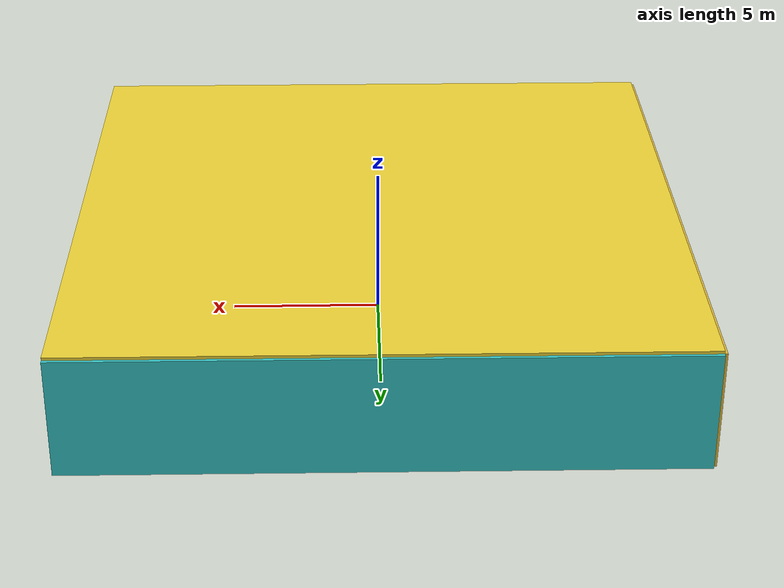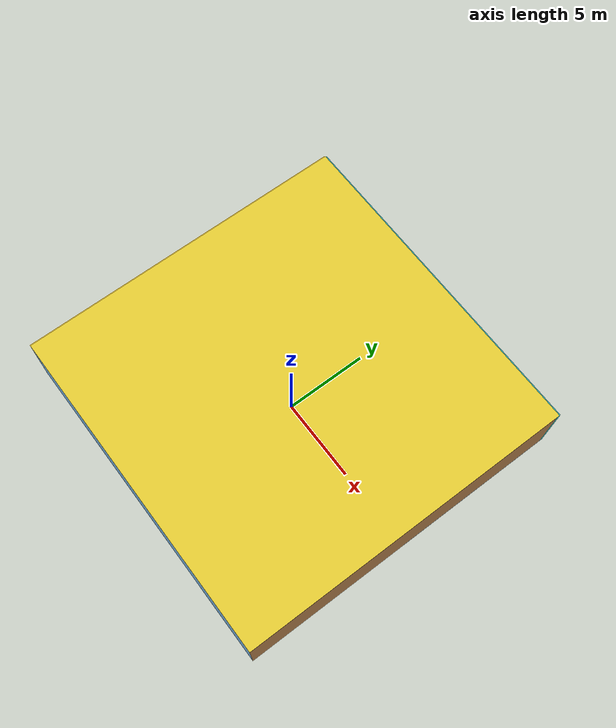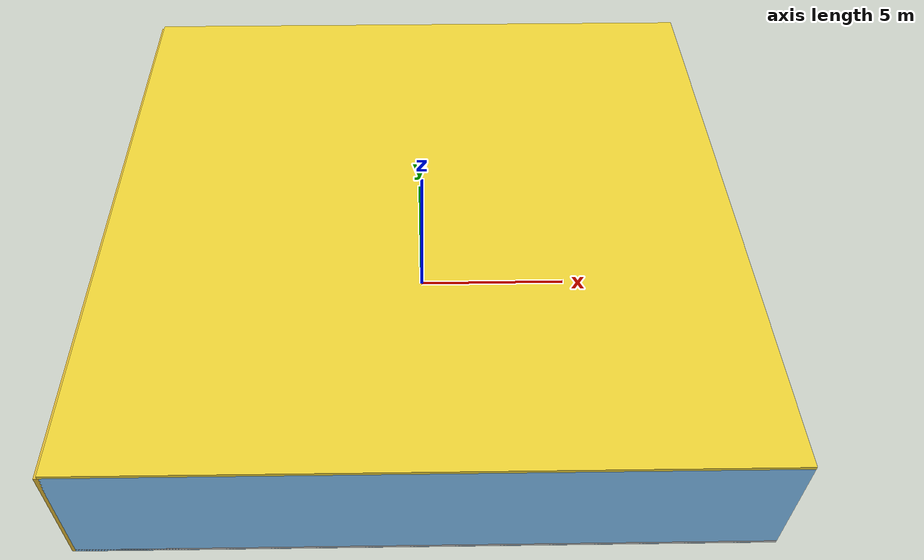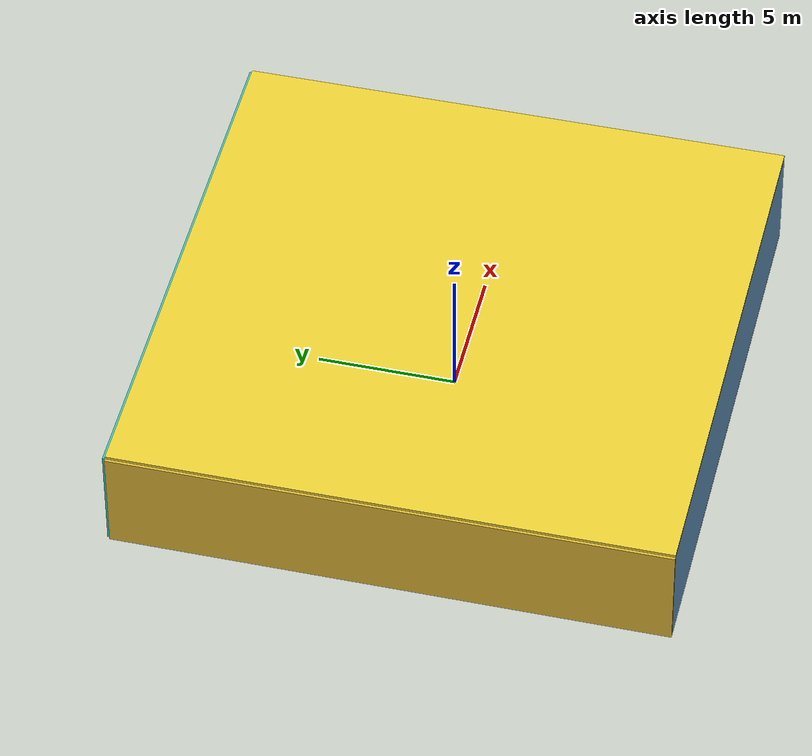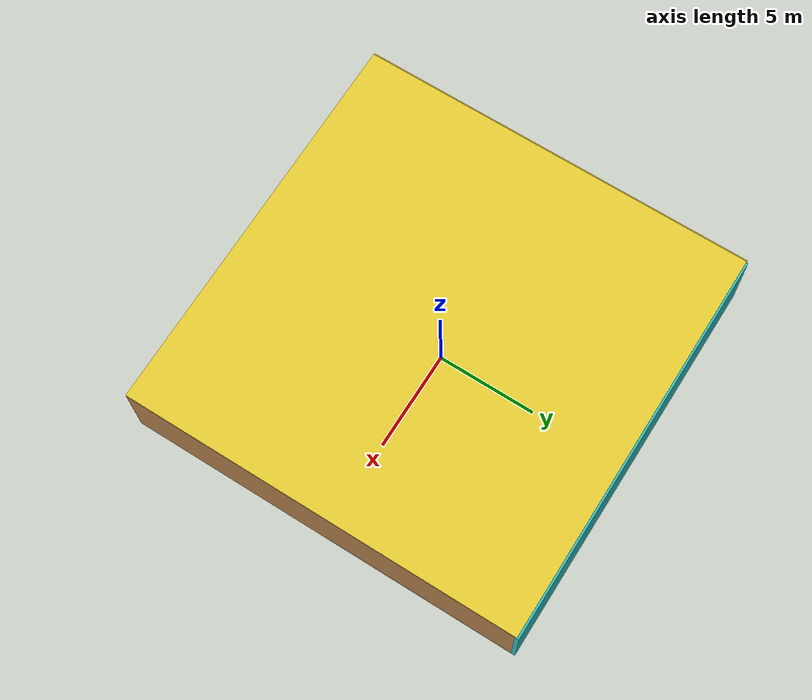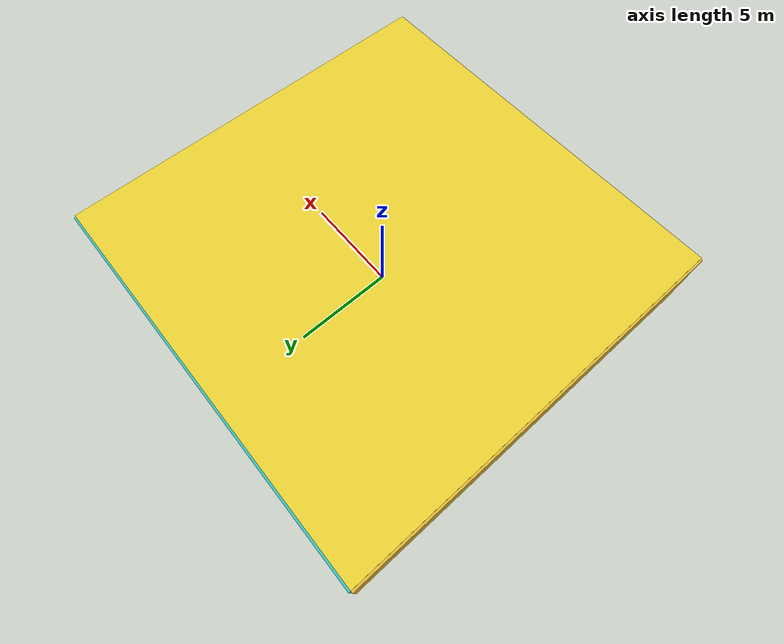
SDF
<sdf version="1.4">
 <world name="default">
  <physics type="ode">
   <max_step_size>0.001</max_step_size>
   <real_time_factor>1</real_time_factor>
   <real_time_update_rate>1000</real_time_update_rate>
   <gravity>0 0 -9.8</gravity>
  </physics>
  <scene><ambient>0.4 0.4 0.4 1</ambient><background>0.7 0.7 0.7 1</background><shadows>1</shadows></scene>
  <model name="Surrounding">
   <static>1</static>
   <link name="Ceiling">
    <collision name="Ceiling_Collision"><geometry><box><size>20 20 0.1</size></box></geometry></collision>
    <visual name="Ceiling_Visual">
     <geometry><box><size>20 20 0.1</size></box></geometry>
     <material>
      <script><uri>file://media/materials/scripts/gazebo.material</uri><name>Gazebo/ZincYellow</name></script>
     </material>
    </visual>
    <pose>0 0 4.05 0 0 0</pose>
   </link>
   <link name="Wall_South">
    <collision name="Wall_South_Collision">
     <geometry><box><size>20 0 4</size></box></geometry>
     <pose>0 0 2 0 -0 0</pose>
    </collision>
    <visual name="Wall_South_Visual">
     <pose>0 0 2 0 -0 0</pose>
     <geometry><box><size>20 0 4</size></box></geometry>
     <material>
      <script><uri>file://media/materials/scripts/gazebo.material</uri><name>Gazebo/SkyBlue</name></script>
     </material>
    </visual>
    <velocity_decay><linear>0</linear><angular>0</angular></velocity_decay>
    <pose>0 -10 0 0 -0 0</pose>
   </link>
   <link name="Wall_East">
    <collision name="Wall_21_Collision">
     <geometry><box><size>20 0 4</size></box></geometry>
     <pose>0 0 2 0 -0 0</pose>
    </collision>
    <visual name="Wall_21_Visual">
     <pose>0 0 2 0 -0 0</pose>
     <geometry><box><size>20 0 4</size></box></geometry>
     <material>
      <script><uri>file://media/materials/scripts/gazebo.material</uri><name>Gazebo/WoodPallet</name></script>
     </material>
    </visual>
    <velocity_decay><linear>0</linear><angular>0</angular></velocity_decay>
    <pose>10 0 0 0 -0 1.5708</pose>
   </link>
   <link name="Wall_North">
    <collision name="Wall_22_Collision">
     <geometry><box><size>20 0.2 4</size></box></geometry>
     <pose>0 0 2 0 -0 0</pose>
    </collision>
    <visual name="Wall_22_Visual">
     <pose>0 0 2 0 -0 0</pose>
     <geometry><box><size>20 0.2 4</size></box></geometry>
     <material>
      <script>
       <uri>file://media/materials/scripts/gazebo.material</uri>
       <name>Gazebo/TurquoiseGlowOutline</name>
      </script>
     </material>
    </visual>
    <velocity_decay><linear>0</linear><angular>0</angular></velocity_decay>
    <pose>0 10 0 0 -0 0</pose>
   </link>
   <link name="Wall_West">
    <collision name="Wall_23_Collision">
     <geometry><box><size>20 0.2 4</size></box></geometry>
     <pose>0 0 2 0 -0 0</pose>
    </collision>
    <visual name="Wall_23_Visual">
     <pose>0 0 2 0 -0 0</pose>
     <geometry><box><size>20 0.2 4</size></box></geometry>
     <material>
      <script><uri>file://media/materials/scripts/gazebo.material</uri><name>Gazebo/Gold</name></script>
     </material>
    </visual>
    <velocity_decay><linear>0</linear><angular>0</angular></velocity_decay>
    <pose>-10 0 0 0 0 -1.5708</pose>
   </link>
   <link name="Ground_link">
    <collision name="collision">
     <pose>0 0 .05 0 -0 0</pose>
     <geometry><box><size>20 20 0.1</size></box></geometry>
    </collision>
    <visual name="visual">
     <pose>0 0 .05 0 -0 0</pose>
     <geometry><box><size>20 20 0.1</size></box></geometry>
     <material>
      <script><uri>file://media/materials/scripts/gazebo.material</uri><name>Gazebo/LightOff</name></script>
     </material>
    </visual>
   </link>
   <static>1</static>
  </model>
  <spherical_coordinates>
   <surface_model>EARTH_WGS84</surface_model>
   <latitude_deg>0</latitude_deg>
   <longitude_deg>0</longitude_deg>
   <elevation>0</elevation>
   <heading_deg>0</heading_deg>
  </spherical_coordinates>
  <light name="lightball_0" type="diffuse">
   <diffuse>0.8 0.8 0.8 1</diffuse>
   <specular>0.2 0.2 0.2 1</specular>
   <attenuation>
    <range>100</range>
    <constant>0.7</constant>
    <linear>0.01</linear>
    <quadratic>0.001</quadratic>
   </attenuation>
   <direction>-0.5 0.1 -0.9</direction>
   <pose>-7.48862736599 7.44030804497 1.39911546802 0 0 0</pose>
  </light>
  <light name="lightball_1" type="diffuse">
   <diffuse>0.8 0.8 0.8 1</diffuse>
   <specular>0.2 0.2 0.2 1</specular>
   <attenuation>
    <range>100</range>
    <constant>0.7</constant>
    <linear>0.01</linear>
    <quadratic>0.001</quadratic>
   </attenuation>
   <direction>-0.5 0.1 -0.9</direction>
   <pose>6.13905464371 8.3071751952 0.535871669314 0 0 0</pose>
  </light>
  <light name="lightball_2" type="diffuse">
   <diffuse>0.8 0.8 0.8 1</diffuse>
   <specular>0.2 0.2 0.2 1</specular>
   <attenuation>
    <range>100</range>
    <constant>0.7</constant>
    <linear>0.01</linear>
    <quadratic>0.001</quadratic>
   </attenuation>
   <direction>-0.5 0.1 -0.9</direction>
   <pose>4.85009296407 0.437007060411 3.29103947129 0 0 0</pose>
  </light>
  <light name="lightball_3" type="diffuse">
   <diffuse>0.8 0.8 0.8 1</diffuse>
   <specular>0.2 0.2 0.2 1</specular>
   <attenuation>
    <range>100</range>
    <constant>0.7</constant>
    <linear>0.01</linear>
    <quadratic>0.001</quadratic>
   </attenuation>
   <direction>-0.5 0.1 -0.9</direction>
   <pose>-1.69858284553 -2.93204385469 3.58967700279 0 0 0</pose>
  </light>
  <light name="lightball_4" type="diffuse">
   <diffuse>0.8 0.8 0.8 1</diffuse>
   <specular>0.2 0.2 0.2 1</specular>
   <attenuation>
    <range>100</range>
    <constant>0.7</constant>
    <linear>0.01</linear>
    <quadratic>0.001</quadratic>
   </attenuation>
   <direction>-0.5 0.1 -0.9</direction>
   <pose>-8.87947355261 1.88600149614 2.14412020149 0 0 0</pose>
  </light>
  <light name="lightball_5" type="diffuse">
   <diffuse>0.8 0.8 0.8 1</diffuse>
   <specular>0.2 0.2 0.2 1</specular>
   <attenuation>
    <range>100</range>
    <constant>0.7</constant>
    <linear>0.01</linear>
    <quadratic>0.001</quadratic>
   </attenuation>
   <direction>-0.5 0.1 -0.9</direction>
   <pose>3.44463186396 1.22753264503 1.25269168511 0 0 0</pose>
  </light>
  <light name="lightball_6" type="diffuse">
   <diffuse>0.8 0.8 0.8 1</diffuse>
   <specular>0.2 0.2 0.2 1</specular>
   <attenuation>
    <range>100</range>
    <constant>0.7</constant>
    <linear>0.01</linear>
    <quadratic>0.001</quadratic>
   </attenuation>
   <direction>-0.5 0.1 -0.9</direction>
   <pose>2.65478610836 -5.15977817338 1.84918785299 0 0 0</pose>
  </light>
  <light name="lightball_7" type="diffuse">
   <diffuse>0.8 0.8 0.8 1</diffuse>
   <specular>0.2 0.2 0.2 1</specular>
   <attenuation>
    <range>100</range>
    <constant>0.7</constant>
    <linear>0.01</linear>
    <quadratic>0.001</quadratic>
   </attenuation>
   <direction>-0.5 0.1 -0.9</direction>
   <pose>-2.76710498757 0.41856198958 3.42191930477 0 0 0</pose>
  </light>
  <light name="lightball_8" type="diffuse">
   <diffuse>0.8 0.8 0.8 1</diffuse>
   <specular>0.2 0.2 0.2 1</specular>
   <attenuation>
    <range>100</range>
    <constant>0.7</constant>
    <linear>0.01</linear>
    <quadratic>0.001</quadratic>
   </attenuation>
   <direction>-0.5 0.1 -0.9</direction>
   <pose>9.78144697052 2.79358667563 3.7726090925 0 0 0</pose>
  </light>
  <include>
   <uri>model://robocup_3Dsim_goal</uri>
   <pose>-7.47451624437 8.22220217681 0 0 0 2.96357139927</pose>
  </include>
  <include><uri>model://cabinet</uri><pose>-4.25869717133 0.953553347758 0 0 0 2.43130383561</pose></include>
  <include>
   <uri>model://construction_cone</uri>
   <pose>-1.19081917052 -4.43255553604 0 0 0 0.26814605152</pose>
  </include>
  <include>
   <uri>model://textured_shapes</uri>
   <pose>4.55951258915 -3.9676234352 0 0 0 1.08537635367</pose>
  </include>
 </world>
</sdf>

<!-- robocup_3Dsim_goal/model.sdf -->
<sdf version="1.5">
  <model name="robocup_3d_goal">
    <static>true</static>
    <link name="left_post">
      <pose>0 1.05 0.45 0 0 0</pose>
      <collision name="collision">
        <geometry>
          <cylinder>
            <radius>0.05</radius>
            <length>0.9</length>
          </cylinder>
        </geometry>
      </collision>
      <visual name="visual">
        <geometry>
          <cylinder>
            <radius>0.05</radius>
            <length>0.9</length>
          </cylinder>
        </geometry>
        <material>
          <script>
            <uri>file://media/materials/scripts/gazebo.material</uri>
            <name>Gazebo/ZincYellow</name>
          </script>
        </material>
      </visual>
    </link>
    <link name="left_support_horiz_lower">
      <pose>0.30 1.05 0.01 0 0 0</pose>
      <collision name="collision">
        <geometry>
          <box>
            <size>0.50 0.02 0.02</size>
          </box>
        </geometry>
      </collision>
      <visual name="visual">
        <geometry>
          <box>
            <size>0.50 0.02 0.02</size>
          </box>
        </geometry>
        <material>
          <script>
            <uri>file://media/materials/scripts/gazebo.material</uri>
            <name>Gazebo/White</name>
          </script>
        </material>
      </visual>
    </link>
    <link name="left_support_horiz_upper">
      <pose>0.30 1.05 0.79 0 0 0</pose>
      <collision name="collision">
        <geometry>
          <box>
            <size>0.50 0.02 0.02</size>
          </box>
        </geometry>
      </collision>
      <visual name="visual">
        <geometry>
          <box>
            <size>0.50 0.02 0.02</size>
          </box>
        </geometry>
        <material>
          <script>
            <uri>file://media/materials/scripts/gazebo.material</uri>
            <name>Gazebo/White</name>
          </script>
        </material>
      </visual>
    </link>
    <link name="left_support_vertical">
      <pose>0.56 1.05 0.4 0 1.5708 0</pose>
      <collision name="collision">
        <geometry>
          <box>
            <size>0.80 0.02 0.02</size>
          </box>
        </geometry>
      </collision>
      <visual name="visual">
        <geometry>
          <box>
            <size>0.80 0.02 0.02</size>
          </box>
        </geometry>
        <material>
          <script>
            <uri>file://media/materials/scripts/gazebo.material</uri>
            <name>Gazebo/White</name>
          </script>
        </material>
      </visual>
    </link>
    <link name="right_support_horiz_lower">
      <pose>0.30 -1.05 0.01 0 0 0</pose>
      <collision name="collision">
        <geometry>
          <box>
            <size>0.50 0.02 0.02</size>
          </box>
        </geometry>
      </collision>
      <visual name="visual">
        <geometry>
          <box>
            <size>0.50 0.02 0.02</size>
          </box>
        </geometry>
        <material>
          <script>
            <uri>file://media/materials/scripts/gazebo.material</uri>
            <name>Gazebo/White</name>
          </script>
        </material>
      </visual>
    </link>
    <link name="right_support_horiz_upper">
      <pose>0.30 -1.05 0.79 0 0 0</pose>
      <collision name="collision">
        <geometry>
          <box>
            <size>0.50 0.02 0.02</size>
          </box>
        </geometry>
      </collision>
      <visual name="visual">
        <geometry>
          <box>
            <size>0.50 0.02 0.02</size>
          </box>
        </geometry>
        <material>
          <script>
            <uri>file://media/materials/scripts/gazebo.material</uri>
            <name>Gazebo/White</name>
          </script>
        </material>
      </visual>
    </link>
    <link name="right_support_vertical">
      <pose>0.56 -1.05 0.4 0 1.5708 0</pose>
      <collision name="collision">
        <geometry>
          <box>
            <size>0.80 0.02 0.02</size>
          </box>
        </geometry>
      </collision>
      <visual name="visual">
        <geometry>
          <box>
            <size>0.80 0.02 0.02</size>
          </box>
        </geometry>
        <material>
          <script>
            <uri>file://media/materials/scripts/gazebo.material</uri>
            <name>Gazebo/White</name>
          </script>
        </material>
      </visual>
    </link>
    <link name="center_support_horiz_lower">
      <pose>0.56 0 0.01 0 1.5708 0</pose>
      <collision name="collision">
        <geometry>
          <box>
            <size>0.02 2.08 0.02</size>
          </box>
        </geometry>
      </collision>
      <visual name="visual">
        <geometry>
          <box>
            <size>0.02 2.08 0.02</size>
          </box>
        </geometry>
        <material>
          <script>
            <uri>file://media/materials/scripts/gazebo.material</uri>
            <name>Gazebo/White</name>
          </script>
        </material>
      </visual>
    </link>
    <link name="center_support_horiz_upper">
      <pose>0.56 0 0.79 0 1.5708 0</pose>
      <collision name="collision">
        <geometry>
          <box>
            <size>0.02 2.08 0.02</size>
          </box>
        </geometry>
      </collision>
      <visual name="visual">
        <geometry>
          <box>
            <size>0.02 2.08 0.02</size>
          </box>
        </geometry>
        <material>
          <script>
            <uri>file://media/materials/scripts/gazebo.material</uri>
            <name>Gazebo/White</name>
          </script>
        </material>
      </visual>
    </link>
    <link name="right_post">
      <pose>0 -1.05 0.45 0 0 0</pose>
      <collision name="collision">
        <geometry>
          <cylinder>
            <radius>0.05</radius>
            <length>0.9</length>
          </cylinder>
        </geometry>
      </collision>
      <visual name="visual">
        <geometry>
          <cylinder>
            <radius>0.05</radius>
            <length>0.9</length>
          </cylinder>
        </geometry>
        <material>
          <script>
            <uri>file://media/materials/scripts/gazebo.material</uri>
            <name>Gazebo/ZincYellow</name>
          </script>
        </material>
      </visual>
    </link>
    <link name="crossbar">
      <pose>0 0 0.85 1.57 1.57 0</pose>
      <collision name="collision">
        <geometry>
          <cylinder>
            <radius>0.05</radius>
            <length>2.0</length>
          </cylinder>
        </geometry>
      </collision>
      <visual name="visual">
        <geometry>
          <cylinder>
            <radius>0.05</radius>
            <length>2.0</length>
          </cylinder>
        </geometry>
        <material>
          <script>
            <uri>file://media/materials/scripts/gazebo.material</uri>
            <name>Gazebo/ZincYellow</name>
          </script>
        </material>
      </visual>
    </link>
    <link name="center_net">
      <pose>0.56 0 0.40 0 0 0</pose>
      <collision name="collision">
        <geometry>
          <box>
            <size>0.01 2.1 0.80</size>
          </box>
        </geometry>
      </collision>
      <visual name="visual">
        <geometry>
          <box>
            <size>0.01 2.1 0.80</size>
          </box>
        </geometry>
        <material>
          <script>
            <uri>model://../model_source/models/robocup09_spl_field/materials/scripts/</uri>
            <uri>model://../model_source/models/robocup09_spl_field/materials/textures/</uri>
            <name>RoboCup/Net</name>
          </script>
        </material>
      </visual>
    </link>
    <link name="left_net">
      <pose>0.30 1.05 0.40 0 0 0</pose>
      <collision name="collision">
        <geometry>
          <box>
            <size>0.50 0.01 0.76</size>
          </box>
        </geometry>
      </collision>
      <visual name="visual">
        <geometry>
          <box>
            <size>0.50 0.01 0.76</size>
          </box>
        </geometry>
        <material>
          <script>
            <uri>model://../model_source/models/robocup09_spl_field/materials/scripts/</uri>
            <uri>model://../model_source/models/robocup09_spl_field/materials/textures/</uri>
            <name>RoboCup/Net</name>
          </script>
        </material>
      </visual>
    </link>
    <link name="right_net">
      <pose>0.30 -1.05 0.40 0 0 0</pose>
      <collision name="collision">
        <geometry>
          <box>
            <size>0.50 0.01 0.76</size>
          </box>
        </geometry>
      </collision>
      <visual name="visual">
        <geometry>
          <box>
            <size>0.50 0.01 0.76</size>
          </box>
        </geometry>
        <material>
          <script>
            <uri>model://../model_source/models/robocup09_spl_field/materials/scripts/</uri>
            <uri>model://../model_source/models/robocup09_spl_field/materials/textures/</uri>
            <name>RoboCup/Net</name>
          </script>
        </material>
      </visual>
    </link>
  </model>
</sdf>

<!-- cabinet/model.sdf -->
<sdf version="1.5">
  <model name="cabinet">
    <static>true</static>
    <link name="cabinet_bottom_plate">
      <inertial>
        <pose>0 0 -1 0 0 0</pose>
        <inertia>
          <ixx>2.050000</ixx>
          <ixy>0</ixy>
          <ixz>0</ixz>
          <iyy>2.050000</iyy>
          <iyz>0</iyz>
          <izz>2.050000</izz>
        </inertia>
        <mass>25.000000</mass>
      </inertial>
      <collision name="cabinet_bottom_plate_geom">
        <pose>0 0 0.010000 0 0 0</pose>
        <geometry>
          <box>
            <size>0.450000 0.450000 0.020000</size>
          </box>
        </geometry>
      </collision>
      <visual name="cabinet_bottom_plate_geom_visual">
        <pose>0 0 0.010000 0 0 0</pose>
        <geometry>
          <box>
            <size>0.450000 0.450000 0.020000</size>
          </box>
        </geometry>
        <material>
          <script>
            <uri>model://media/materials/scripts/gazebo.material</uri>
            <name>Gazebo/Wood</name>
          </script>
        </material>
      </visual>
      <collision name="cabinet_bottom_plate_geom_cabinet_back_plate">
        <pose>0.235000 0 0.510000 0 0 0</pose>
        <geometry>
          <box>
            <size>0.020000 0.450000 1.020000</size>
          </box>
        </geometry>
      </collision>
      <visual name="cabinet_bottom_plate_geom_cabinet_back_plate_visual">
        <pose>0.235000 0 0.510000 0 0 0</pose>
        <geometry>
          <box>
            <size>0.020000 0.450000 1.020000</size>
          </box>
        </geometry>
        <material>
          <script>
            <uri>model://media/materials/scripts/gazebo.material</uri>
            <name>Gazebo/Wood</name>
          </script>
        </material>
      </visual>
      <collision name="cabinet_bottom_plate_geom_cabinet_left_plate">
        <pose>0 0.235000 0.510000 0 0 0</pose>
        <geometry>
          <box>
            <size>0.450000 0.020000 1.020000</size>
          </box>
        </geometry>
      </collision>
      <visual name="cabinet_bottom_plate_geom_cabinet_left_plate_visual">
        <pose>0 0.235000 0.510000 0 0 0</pose>
        <geometry>
          <box>
            <size>0.450000 0.020000 1.020000</size>
          </box>
        </geometry>
        <material>
          <script>
            <uri>model://media/materials/scripts/gazebo.material</uri>
            <name>Gazebo/Wood</name>
          </script>
        </material>
      </visual>
      <collision name="cabinet_bottom_plate_geom_cabinet_middle_plate">
        <pose>0 0 0.510000 0 0 0</pose>
        <geometry>
          <box>
            <size>0.450000 0.450000 0.020000</size>
          </box>
        </geometry>
      </collision>
      <visual name="cabinet_bottom_plate_geom_cabinet_middle_plate_visual">
        <pose>0 0 0.510000 0 0 0</pose>
        <geometry>
          <box>
            <size>0.450000 0.450000 0.020000</size>
          </box>
        </geometry>
        <material>
          <script>
            <uri>model://media/materials/scripts/gazebo.material</uri>
            <name>Gazebo/Wood</name>
          </script>
        </material>
      </visual>
      <collision name="cabinet_bottom_plate_geom_cabinet_right_plate">
        <pose>0 -0.235000 0.510000 0 0 0</pose>
        <geometry>
          <box>
            <size>0.450000 0.020000 1.020000</size>
          </box>
        </geometry>
      </collision>
      <visual name="cabinet_bottom_plate_geom_cabinet_right_plate_visual">
        <pose>0 -0.235000 0.510000 0 0 0</pose>
        <geometry>
          <box>
            <size>0.450000 0.020000 1.020000</size>
          </box>
        </geometry>
        <material>
          <script>
            <uri>model://media/materials/scripts/gazebo.material</uri>
            <name>Gazebo/Wood</name>
          </script>
        </material>
      </visual>
      <collision name="cabinet_bottom_plate_geom_cabinet_top_plate">
        <pose>0 0 1.010000 0 0 0</pose>
        <geometry>
          <box>
            <size>0.450000 0.450000 0.020000</size>
          </box>
        </geometry>
      </collision>
      <visual name="cabinet_bottom_plate_geom_cabinet_top_plate_visual">
        <pose>0 0 1.010000 0 0 0</pose>
        <geometry>
          <box>
            <size>0.450000 0.450000 0.020000</size>
          </box>
        </geometry>
        <material>
          <script>
            <uri>model://media/materials/scripts/gazebo.material</uri>
            <name>Gazebo/Wood</name>
          </script>
        </material>
      </visual>
    </link>
  </model>
</sdf>

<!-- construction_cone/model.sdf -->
<sdf version="1.5">
  <model name="Construction Cone">
    <link name="link">
      <collision name="collision">
        <geometry>
          <mesh>
            <scale>10 10 10</scale>
            <uri>file://isr-testbed/construction_cone/meshes/construction_cone.dae</uri>
          </mesh>
        </geometry>
      </collision>
      <visual name="visual">
        <geometry>
          <mesh>
            <scale>10 10 10</scale>
            <uri>file://isr-testbed/construction_cone/meshes/construction_cone.dae</uri>
          </mesh>
        </geometry>
      </visual>
    </link>
  </model>
</sdf>

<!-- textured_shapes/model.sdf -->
<sdf version="1.6">
  <model name="textured_shapes">
    <pose>0 0 0.5 0 0 0</pose>
    <link name="box">
      <pose>0 -1.5 0 0 0 0</pose>
      <collision name="collision">
        <geometry>
          <box>
            <size>1 1 1</size>
          </box>
        </geometry>
      </collision>
      <visual name="visual">
        <geometry>
          <box>
            <size>1 1 1</size>
          </box>
        </geometry>
        <material>
          <script>
            <uri>model://../model_source/models/textured_shapes/materials/scripts</uri>
            <uri>model://../model_source/models/textured_shapes/materials/textures</uri>
            <name>TexturedShape/Squares</name>
          </script>
        </material>
      </visual>
    </link>
    <link name="sphere">
      <collision name="collision">
        <geometry>
          <sphere>
            <radius>0.5</radius>
          </sphere>
        </geometry>
      </collision>
      <visual name="visual">
        <geometry>
          <sphere>
            <radius>0.5</radius>
          </sphere>
        </geometry>
        <material>
          <script>
            <uri>model://../model_source/models/textured_shapes/materials/scripts</uri>
            <uri>model://../model_source/models/textured_shapes/materials/textures</uri>
            <name>TexturedShape/Squares</name>
          </script>
        </material>
      </visual>
    </link>
    <link name="cylinder">
      <pose>0 1.5 0 0 0 0</pose>
      <collision name="collision">
        <geometry>
          <cylinder>
            <radius>0.5</radius>
            <length>1</length>
          </cylinder>
        </geometry>
      </collision>
      <visual name="visual">
        <geometry>
          <cylinder>
            <radius>0.5</radius>
            <length>1</length>
          </cylinder>
        </geometry>
        <material>
          <script>
            <uri>model://../model_source/models/textured_shapes/materials/scripts</uri>
            <uri>model://../model_source/models/textured_shapes/materials/textures</uri>
            <name>TexturedShape/Squares</name>
          </script>
        </material>
      </visual>
    </link>
  </model>
</sdf>
